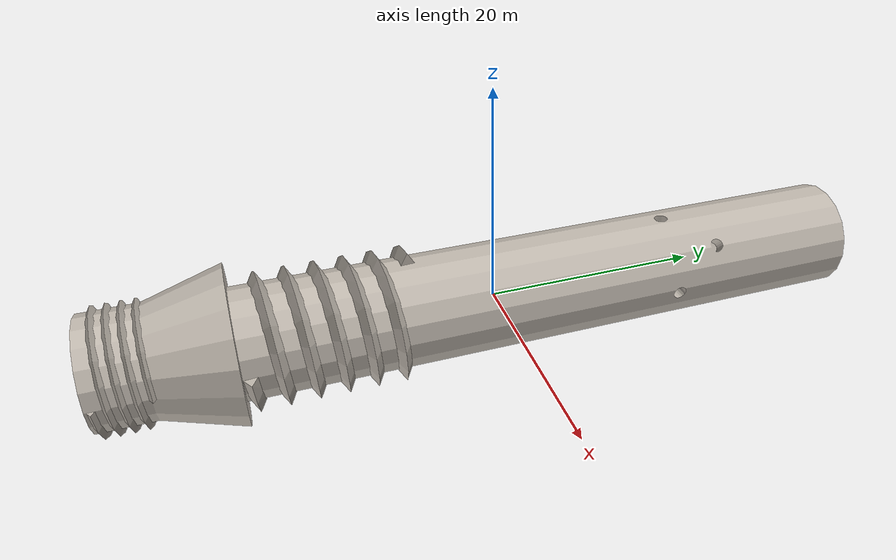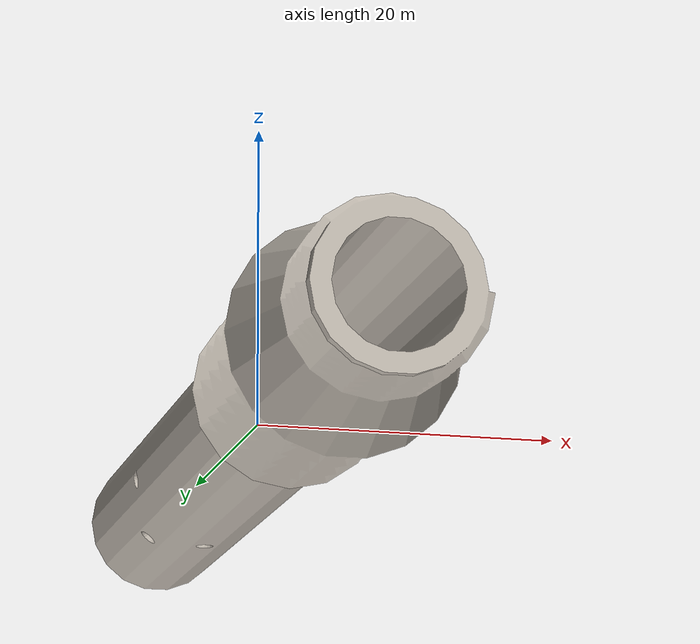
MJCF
<?xml version="1.0" encoding="utf-8"?>
<mujoco model="Gas diffuser">
  <default>
    <default class="visual">
      <geom group="2" type="mesh" contype="0" conaffinity="0"/>
    </default>
    <default class="collision">
      <geom group="3" type="mesh"/>
    </default>
  </default>
  <asset>
    <texture type="2d" name="Gas diffuser_BaseColor" file="Gas diffuser/Gas diffuser_BaseColor.png"/>
    <material name="material_0" texture="Gas diffuser_BaseColor" specular="1.0" shininess="0.5"/>
    <mesh file="Gas diffuser/Gas diffuser.obj" name="Gas diffuser"/>
    <mesh file="Gas diffuser/Gas diffuser_collision_0.obj" name="Gas diffuser_collision_0"/>
    <mesh file="Gas diffuser/Gas diffuser_collision_1.obj" name="Gas diffuser_collision_1"/>
    <mesh file="Gas diffuser/Gas diffuser_collision_2.obj" name="Gas diffuser_collision_2"/>
    <mesh file="Gas diffuser/Gas diffuser_collision_3.obj" name="Gas diffuser_collision_3"/>
    <mesh file="Gas diffuser/Gas diffuser_collision_4.obj" name="Gas diffuser_collision_4"/>
    <mesh file="Gas diffuser/Gas diffuser_collision_5.obj" name="Gas diffuser_collision_5"/>
    <mesh file="Gas diffuser/Gas diffuser_collision_6.obj" name="Gas diffuser_collision_6"/>
    <mesh file="Gas diffuser/Gas diffuser_collision_7.obj" name="Gas diffuser_collision_7"/>
    <mesh file="Gas diffuser/Gas diffuser_collision_8.obj" name="Gas diffuser_collision_8"/>
    <mesh file="Gas diffuser/Gas diffuser_collision_9.obj" name="Gas diffuser_collision_9"/>
    <mesh file="Gas diffuser/Gas diffuser_collision_10.obj" name="Gas diffuser_collision_10"/>
    <mesh file="Gas diffuser/Gas diffuser_collision_11.obj" name="Gas diffuser_collision_11"/>
    <mesh file="Gas diffuser/Gas diffuser_collision_12.obj" name="Gas diffuser_collision_12"/>
    <mesh file="Gas diffuser/Gas diffuser_collision_13.obj" name="Gas diffuser_collision_13"/>
    <mesh file="Gas diffuser/Gas diffuser_collision_14.obj" name="Gas diffuser_collision_14"/>
  </asset>
  <worldbody>
    <body name="Gas diffuser">
      <inertial mass="0.1" diaginertia="0.001 0.001 0.001" pos="0 0 0"/>
      <geom material="material_0" mesh="Gas diffuser" class="visual"/>
      <geom mesh="Gas diffuser_collision_0" rgba="0.1146028357762694 0.24757613291892466 0.980229077836741 1" class="collision"/>
      <geom mesh="Gas diffuser_collision_1" rgba="0.7789424086583571 0.7238295721911123 0.2909000526745871 1" class="collision"/>
      <geom mesh="Gas diffuser_collision_2" rgba="0.1924641385923389 0.7556415875761191 0.6139869527726308 1" class="collision"/>
      <geom mesh="Gas diffuser_collision_3" rgba="0.08758493756028218 0.8807945898421291 0.992418644944355 1" class="collision"/>
      <geom mesh="Gas diffuser_collision_4" rgba="0.13168852391759123 0.38410481287895126 0.7755636370819584 1" class="collision"/>
      <geom mesh="Gas diffuser_collision_5" rgba="0.7981150328269275 0.8999249959120711 0.35552773761330403 1" class="collision"/>
      <geom mesh="Gas diffuser_collision_6" rgba="0.10363486146221002 0.5861997636086533 0.981779997499564 1" class="collision"/>
      <geom mesh="Gas diffuser_collision_7" rgba="0.6231597204763616 0.30234569852276016 0.8698474737381833 1" class="collision"/>
      <geom mesh="Gas diffuser_collision_8" rgba="0.8275025872579553 0.15208506657341014 0.42094388907651914 1" class="collision"/>
      <geom mesh="Gas diffuser_collision_9" rgba="0.013129257782814596 0.36240677794858245 0.890671057448423 1" class="collision"/>
      <geom mesh="Gas diffuser_collision_10" rgba="0.28042684515039884 0.2526965843636789 0.5524721535571185 1" class="collision"/>
      <geom mesh="Gas diffuser_collision_11" rgba="0.8320414474044637 0.6888011563129975 0.4105832178234229 1" class="collision"/>
      <geom mesh="Gas diffuser_collision_12" rgba="0.8860545242127598 0.008127753046722197 0.92013340722502 1" class="collision"/>
      <geom mesh="Gas diffuser_collision_13" rgba="0.5173665319201163 0.7329598950732237 0.6971216411669321 1" class="collision"/>
      <geom mesh="Gas diffuser_collision_14" rgba="0.4638754319695748 0.36573093174188764 0.047292337467141454 1" class="collision"/>
    </body>
  </worldbody>
</mujoco>
